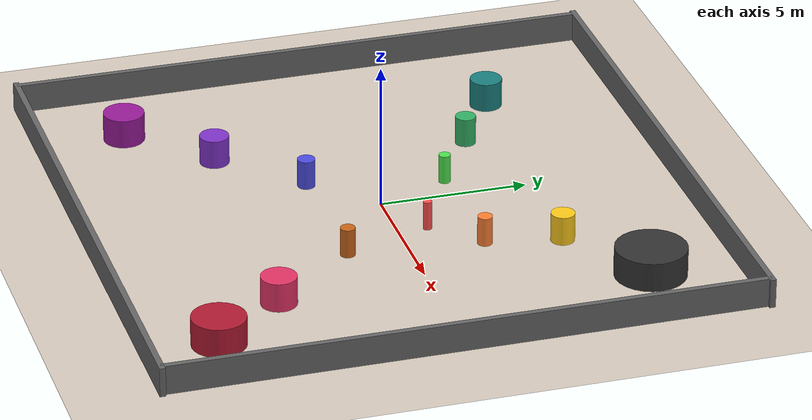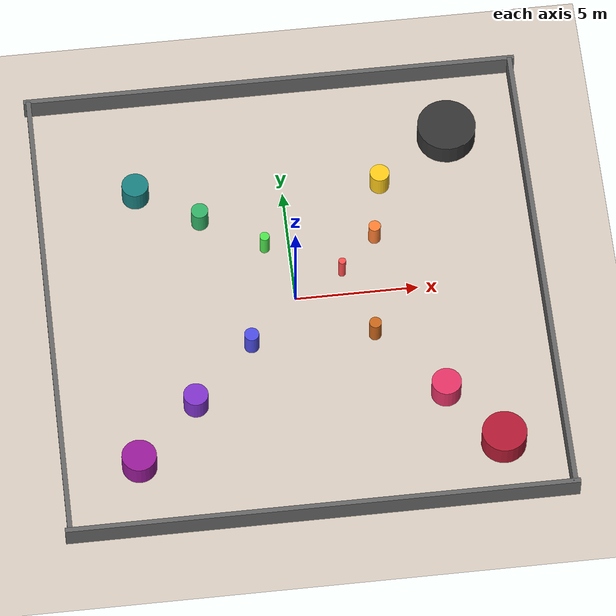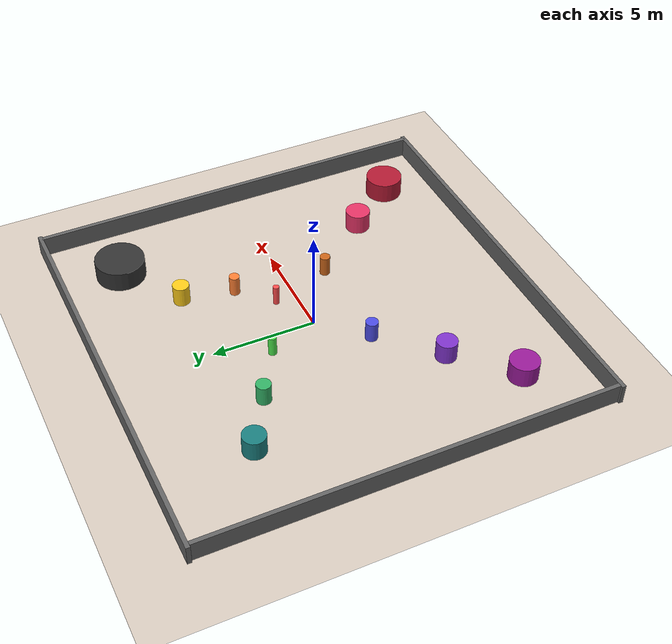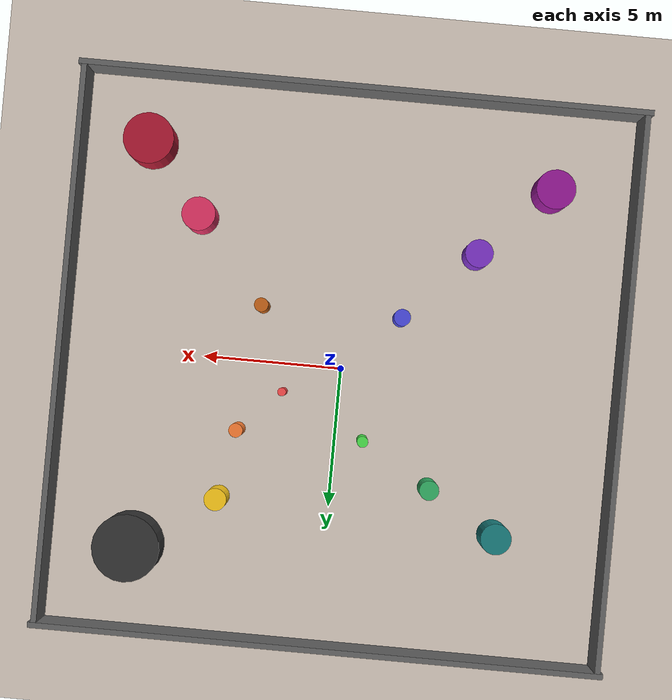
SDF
<?xml version="1.0" ?>
<!-- WORLD: Circles — Spiral arrangement of cylinders with increasing radii -->
<sdf version="1.6">
  <world name="default">
    <physics name="1ms" type="ignored"><max_step_size>0.001</max_step_size><real_time_factor>1.0</real_time_factor></physics>
    <plugin filename="libignition-gazebo-physics-system.so" name="ignition::gazebo::systems::Physics"/>
    <plugin filename="libignition-gazebo-user-commands-system.so" name="ignition::gazebo::systems::UserCommands"/>
    <plugin filename="libignition-gazebo-scene-broadcaster-system.so" name="ignition::gazebo::systems::SceneBroadcaster"/>
    <light type="directional" name="sun"><cast_shadows>true</cast_shadows><pose>0 0 10 0 0 0</pose><diffuse>0.85 0.85 0.85 1</diffuse><specular>0.2 0.2 0.2 1</specular><attenuation><range>1000</range><constant>0.9</constant><linear>0.01</linear><quadratic>0.001</quadratic></attenuation><direction>-0.5 0.1 -0.9</direction></light>
    <model name="ground"><static>true</static><link name="l"><collision name="c"><geometry><plane><normal>0 0 1</normal><size>100 100</size></plane></geometry></collision><visual name="v"><geometry><plane><normal>0 0 1</normal><size>100 100</size></plane></geometry><material><ambient>0.85 0.8 0.75 1</ambient><diffuse>0.85 0.8 0.75 1</diffuse></material></visual></link></model>
    <!-- Arena 20×20 -->
    <model name="wn"><static>true</static><pose>0 10 0.5 0 0 0</pose><link name="l"><collision name="c"><geometry><box><size>20.4 0.2 1</size></box></geometry></collision><visual name="v"><geometry><box><size>20.4 0.2 1</size></box></geometry><material><ambient>0.4 0.4 0.4 1</ambient><diffuse>0.4 0.4 0.4 1</diffuse></material></visual></link></model>
    <model name="ws"><static>true</static><pose>0 -10 0.5 0 0 0</pose><link name="l"><collision name="c"><geometry><box><size>20.4 0.2 1</size></box></geometry></collision><visual name="v"><geometry><box><size>20.4 0.2 1</size></box></geometry><material><ambient>0.4 0.4 0.4 1</ambient><diffuse>0.4 0.4 0.4 1</diffuse></material></visual></link></model>
    <model name="we"><static>true</static><pose>10 0 0.5 0 0 0</pose><link name="l"><collision name="c"><geometry><box><size>0.2 20 1</size></box></geometry></collision><visual name="v"><geometry><box><size>0.2 20 1</size></box></geometry><material><ambient>0.4 0.4 0.4 1</ambient><diffuse>0.4 0.4 0.4 1</diffuse></material></visual></link></model>
    <model name="ww"><static>true</static><pose>-10 0 0.5 0 0 0</pose><link name="l"><collision name="c"><geometry><box><size>0.2 20 1</size></box></geometry></collision><visual name="v"><geometry><box><size>0.2 20 1</size></box></geometry><material><ambient>0.4 0.4 0.4 1</ambient><diffuse>0.4 0.4 0.4 1</diffuse></material></visual></link></model>

    <!-- Spiral of cylinders — placed along a spiral path outward from center -->
    <!-- Arm 1: going northeast, increasing radius -->
    <model name="c1"><static>true</static><pose>2 1 0.5 0 0 0</pose><link name="l"><collision name="c"><geometry><cylinder><radius>0.15</radius><length>1</length></cylinder></geometry></collision><visual name="v"><geometry><cylinder><radius>0.15</radius><length>1</length></cylinder></geometry><material><ambient>1.0 0.3 0.3 1</ambient><diffuse>1.0 0.3 0.3 1</diffuse></material></visual></link></model>
    <model name="c2"><static>true</static><pose>3.5 2.5 0.5 0 0 0</pose><link name="l"><collision name="c"><geometry><cylinder><radius>0.25</radius><length>1</length></cylinder></geometry></collision><visual name="v"><geometry><cylinder><radius>0.25</radius><length>1</length></cylinder></geometry><material><ambient>1.0 0.5 0.2 1</ambient><diffuse>1.0 0.5 0.2 1</diffuse></material></visual></link></model>
    <model name="c3"><static>true</static><pose>4 5 0.5 0 0 0</pose><link name="l"><collision name="c"><geometry><cylinder><radius>0.4</radius><length>1</length></cylinder></geometry></collision><visual name="v"><geometry><cylinder><radius>0.4</radius><length>1</length></cylinder></geometry><material><ambient>1.0 0.8 0.1 1</ambient><diffuse>1.0 0.8 0.1 1</diffuse></material></visual></link></model>
    <!-- Arm 2: going northwest -->
    <model name="c4"><static>true</static><pose>-1 2.5 0.5 0 0 0</pose><link name="l"><collision name="c"><geometry><cylinder><radius>0.2</radius><length>1</length></cylinder></geometry></collision><visual name="v"><geometry><cylinder><radius>0.2</radius><length>1</length></cylinder></geometry><material><ambient>0.3 0.9 0.3 1</ambient><diffuse>0.3 0.9 0.3 1</diffuse></material></visual></link></model>
    <model name="c5"><static>true</static><pose>-3.5 4 0.5 0 0 0</pose><link name="l"><collision name="c"><geometry><cylinder><radius>0.35</radius><length>1</length></cylinder></geometry></collision><visual name="v"><geometry><cylinder><radius>0.35</radius><length>1</length></cylinder></geometry><material><ambient>0.2 0.7 0.4 1</ambient><diffuse>0.2 0.7 0.4 1</diffuse></material></visual></link></model>
    <model name="c6"><static>true</static><pose>-6 5.5 0.5 0 0 0</pose><link name="l"><collision name="c"><geometry><cylinder><radius>0.55</radius><length>1</length></cylinder></geometry></collision><visual name="v"><geometry><cylinder><radius>0.55</radius><length>1</length></cylinder></geometry><material><ambient>0.1 0.5 0.5 1</ambient><diffuse>0.1 0.5 0.5 1</diffuse></material></visual></link></model>
    <!-- Arm 3: going southwest -->
    <model name="c7"><static>true</static><pose>-2 -2 0.5 0 0 0</pose><link name="l"><collision name="c"><geometry><cylinder><radius>0.3</radius><length>1</length></cylinder></geometry></collision><visual name="v"><geometry><cylinder><radius>0.3</radius><length>1</length></cylinder></geometry><material><ambient>0.3 0.3 0.9 1</ambient><diffuse>0.3 0.3 0.9 1</diffuse></material></visual></link></model>
    <model name="c8"><static>true</static><pose>-4.5 -4.5 0.5 0 0 0</pose><link name="l"><collision name="c"><geometry><cylinder><radius>0.5</radius><length>1</length></cylinder></geometry></collision><visual name="v"><geometry><cylinder><radius>0.5</radius><length>1</length></cylinder></geometry><material><ambient>0.5 0.2 0.8 1</ambient><diffuse>0.5 0.2 0.8 1</diffuse></material></visual></link></model>
    <model name="c9"><static>true</static><pose>-7 -7 0.5 0 0 0</pose><link name="l"><collision name="c"><geometry><cylinder><radius>0.7</radius><length>1</length></cylinder></geometry></collision><visual name="v"><geometry><cylinder><radius>0.7</radius><length>1</length></cylinder></geometry><material><ambient>0.6 0.1 0.6 1</ambient><diffuse>0.6 0.1 0.6 1</diffuse></material></visual></link></model>
    <!-- Arm 4: going southeast -->
    <model name="c10"><static>true</static><pose>3 -2 0.5 0 0 0</pose><link name="l"><collision name="c"><geometry><cylinder><radius>0.25</radius><length>1</length></cylinder></geometry></collision><visual name="v"><geometry><cylinder><radius>0.25</radius><length>1</length></cylinder></geometry><material><ambient>0.8 0.4 0.1 1</ambient><diffuse>0.8 0.4 0.1 1</diffuse></material></visual></link></model>
    <model name="c11"><static>true</static><pose>5.5 -5 0.5 0 0 0</pose><link name="l"><collision name="c"><geometry><cylinder><radius>0.6</radius><length>1</length></cylinder></geometry></collision><visual name="v"><geometry><cylinder><radius>0.6</radius><length>1</length></cylinder></geometry><material><ambient>0.9 0.2 0.4 1</ambient><diffuse>0.9 0.2 0.4 1</diffuse></material></visual></link></model>
    <model name="c12"><static>true</static><pose>7.5 -7.5 0.5 0 0 0</pose><link name="l"><collision name="c"><geometry><cylinder><radius>0.9</radius><length>1</length></cylinder></geometry></collision><visual name="v"><geometry><cylinder><radius>0.9</radius><length>1</length></cylinder></geometry><material><ambient>0.7 0.1 0.2 1</ambient><diffuse>0.7 0.1 0.2 1</diffuse></material></visual></link></model>
    <!-- Center landmark -->
    <model name="c0"><static>true</static><pose>7 7 0.5 0 0 0</pose><link name="l"><collision name="c"><geometry><cylinder><radius>1.2</radius><length>1</length></cylinder></geometry></collision><visual name="v"><geometry><cylinder><radius>1.2</radius><length>1</length></cylinder></geometry><material><ambient>0.2 0.2 0.2 1</ambient><diffuse>0.2 0.2 0.2 1</diffuse></material></visual></link></model>
  </world>
</sdf>
